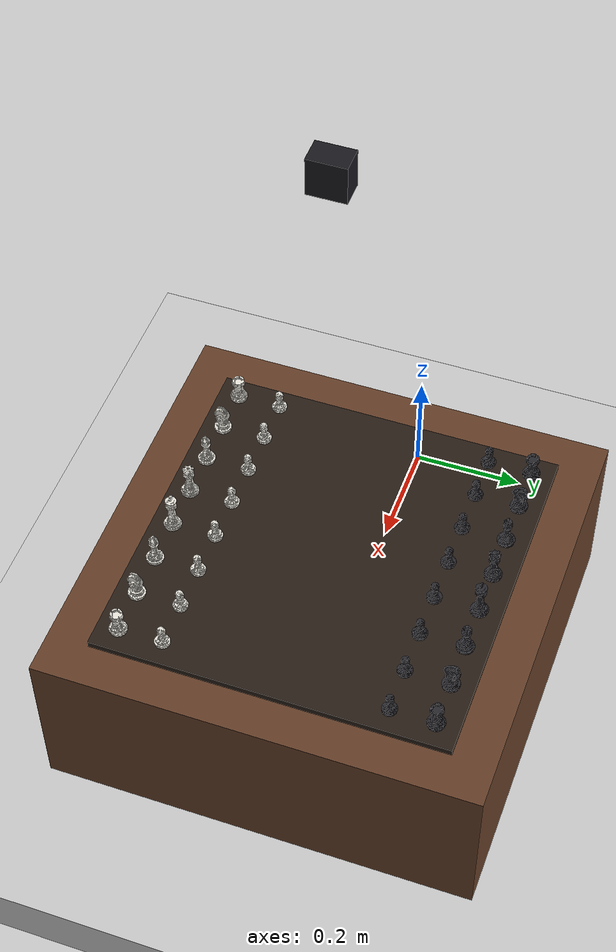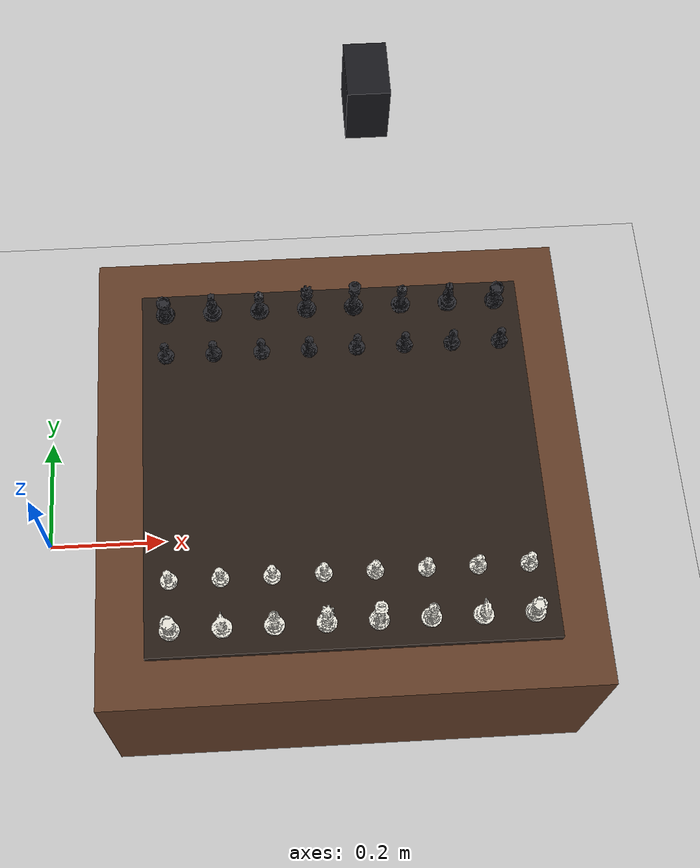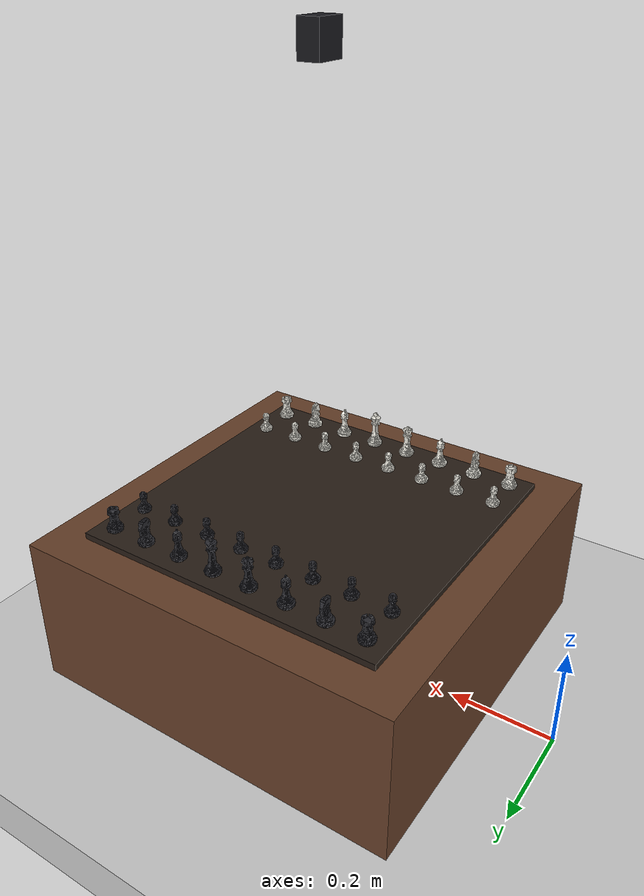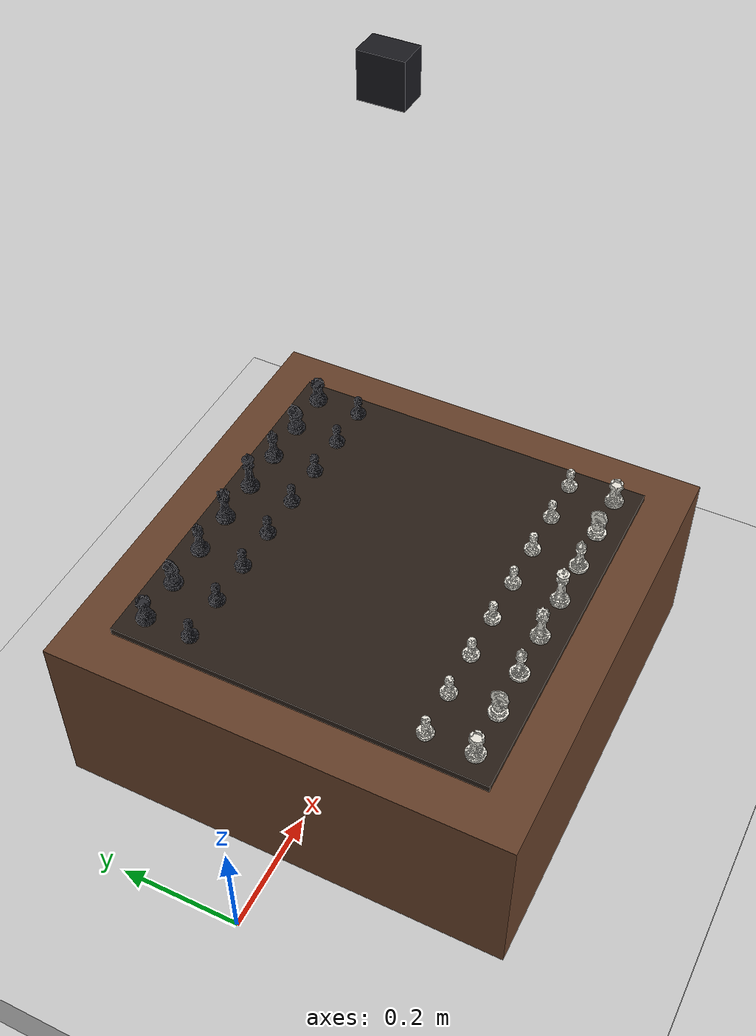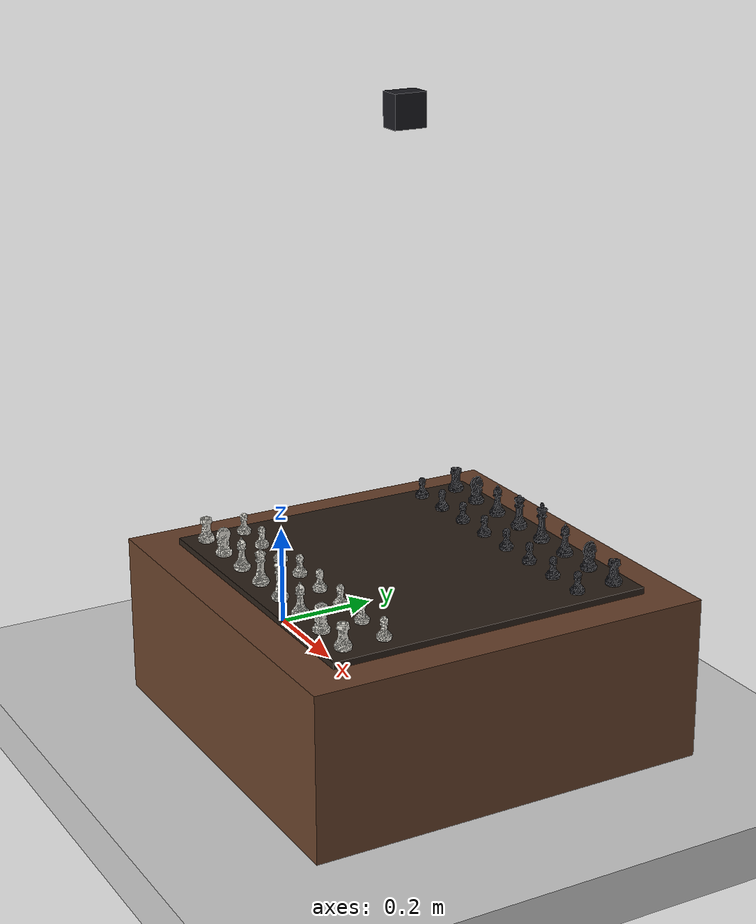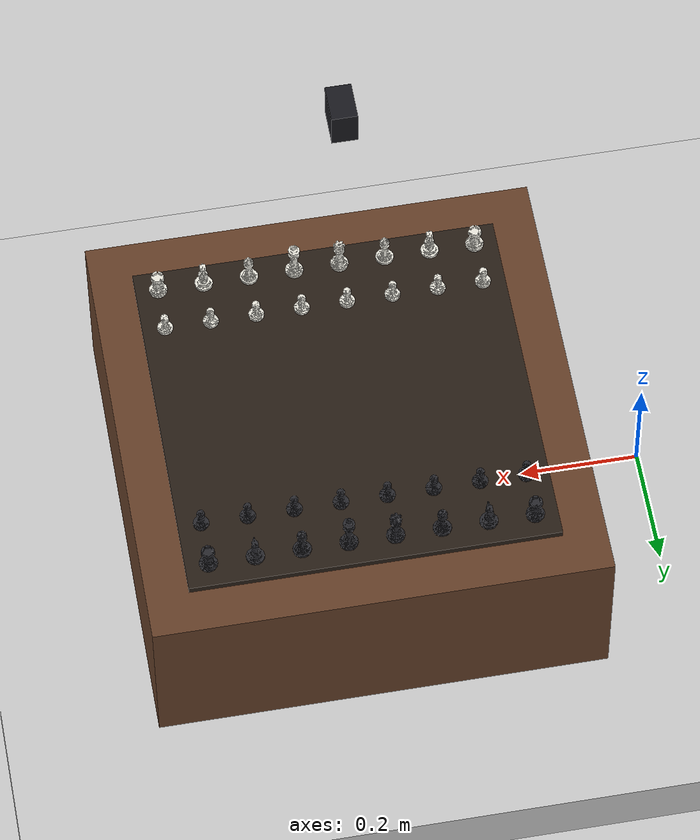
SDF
<?xml version="1.0"?>
<sdf version="1.9">
  <world name="default">
    <plugin
      filename="gz-sim-physics-system"
      name="gz::sim::systems::Physics" />
    <plugin
      filename="gz-sim-user-commands-system"
      name="gz::sim::systems::UserCommands" />
    <plugin
      filename="gz-sim-scene-broadcaster-system"
      name="gz::sim::systems::SceneBroadcaster" />
    <plugin
      filename="gz-sim-sensors-system"
      name="gz::sim::systems::Sensors">
      <render_engine>ogre</render_engine>
    </plugin>

    <gravity>0 0 -9.8</gravity>

    <physics name="physics" type="ode">
      <max_step_size>0.001</max_step_size>
      <real_time_factor>1.0</real_time_factor>
      <real_time_update_rate>1000</real_time_update_rate>
    </physics>

    <scene>
      <ambient>0.7 0.7 0.7 1</ambient>
      <background>0.92 0.94 0.98 1</background>
      <shadows>true</shadows>
    </scene>

    <gui fullscreen="0">
      <plugin filename="MinimalScene" name="3D View">
        <gz-gui>
          <title>3D View</title>
          <property type="bool" key="showTitleBar">false</property>
          <property type="string" key="state">docked</property>
        </gz-gui>
        <engine>ogre</engine>
        <scene>scene</scene>
        <camera_pose>2.05 -1.75 1.45 0.0 0.52 2.35</camera_pose>
      </plugin>
      <plugin filename="WorldControl" name="World control">
        <gz-gui>
          <property type="bool" key="showTitleBar">false</property>
          <property type="bool" key="resizable">false</property>
          <property type="double" key="height">72</property>
          <property type="double" key="z">1</property>
          <property type="string" key="state">floating</property>
        </gz-gui>
        <play_pause>true</play_pause>
        <step>true</step>
        <use_event>true</use_event>
      </plugin>
    </gui>

    <light name="sun" type="directional">
      <cast_shadows>true</cast_shadows>
      <pose>0 0 10 0 0 0</pose>
      <diffuse>0.9 0.9 0.9 1</diffuse>
      <specular>0.2 0.2 0.2 1</specular>
      <attenuation>
        <range>100</range>
        <constant>0.9</constant>
        <linear>0.01</linear>
        <quadratic>0.001</quadratic>
      </attenuation>
      <direction>-0.3 0.2 -1</direction>
    </light>

    <model name="ground_plane">
      <static>true</static>
      <pose>0 0 -0.05 0 0 0</pose>
      <link name="link">
        <collision name="collision">
          <geometry>
            <box>
              <size>10 10 0.1</size>
            </box>
          </geometry>
        </collision>
        <visual name="visual">
          <geometry>
            <box>
              <size>10 10 0.1</size>
            </box>
          </geometry>
          <material>
            <ambient>0.8 0.8 0.8 1</ambient>
            <diffuse>0.8 0.8 0.8 1</diffuse>
          </material>
        </visual>
      </link>
    </model>

    <model name="table">
      <static>true</static>
      <pose>0.5 0 0.15 0 0 0</pose>
      <link name="link">
        <collision name="collision">
          <geometry>
            <box>
              <size>0.75 0.75 0.3</size>
            </box>
          </geometry>
        </collision>
        <visual name="visual">
          <geometry>
            <box>
              <size>0.75 0.75 0.3</size>
            </box>
          </geometry>
          <material>
            <ambient>0.4 0.25 0.16 1</ambient>
            <diffuse>0.4 0.25 0.16 1</diffuse>
          </material>
        </visual>
      </link>
    </model>

    <model name="board">
      <static>true</static>
      <pose>0.501 0 0.306 0 0 0</pose>
      <link name="link">
        <collision name="collision">
          <geometry>
            <box>
              <size>0.608 0.608 0.012</size>
            </box>
          </geometry>
        </collision>
        <visual name="visual">
          <geometry>
            <box>
              <size>0.608 0.608 0.012</size>
            </box>
          </geometry>
          <material>
            <ambient>0.16 0.12 0.09 1</ambient>
            <diffuse>0.16 0.12 0.09 1</diffuse>
          </material>
        </visual>
      </link>
    </model>

    <include>
      <uri>model://white_rook</uri>
      <name>white_rook_a1</name>
      <pose>0.235 -0.266 0.312 0 0 0</pose>
    </include>
    <include>
      <uri>model://white_knight</uri>
      <name>white_knight_b1</name>
      <pose>0.311 -0.266 0.312 0 0 0</pose>
    </include>
    <include>
      <uri>model://white_bishop</uri>
      <name>white_bishop_c1</name>
      <pose>0.387 -0.266 0.312 0 0 0</pose>
    </include>
    <include>
      <uri>model://white_queen</uri>
      <name>white_queen_d1</name>
      <pose>0.463 -0.266 0.312 0 0 0</pose>
    </include>
    <include>
      <uri>model://white_king</uri>
      <name>white_king_e1</name>
      <pose>0.539 -0.266 0.312 0 0 0</pose>
    </include>
    <include>
      <uri>model://white_bishop</uri>
      <name>white_bishop_f1</name>
      <pose>0.615 -0.266 0.312 0 0 0</pose>
    </include>
    <include>
      <uri>model://white_knight</uri>
      <name>white_knight_g1</name>
      <pose>0.691 -0.266 0.312 0 0 0</pose>
    </include>
    <include>
      <uri>model://white_rook</uri>
      <name>white_rook_h1</name>
      <pose>0.767 -0.266 0.312 0 0 0</pose>
    </include>
    <include>
      <uri>model://white_pawn</uri>
      <name>white_pawn_a2</name>
      <pose>0.235 -0.190 0.312 0 0 0</pose>
    </include>
    <include>
      <uri>model://white_pawn</uri>
      <name>white_pawn_b2</name>
      <pose>0.311 -0.190 0.312 0 0 0</pose>
    </include>
    <include>
      <uri>model://white_pawn</uri>
      <name>white_pawn_c2</name>
      <pose>0.387 -0.190 0.312 0 0 0</pose>
    </include>
    <include>
      <uri>model://white_pawn</uri>
      <name>white_pawn_d2</name>
      <pose>0.463 -0.190 0.312 0 0 0</pose>
    </include>
    <include>
      <uri>model://white_pawn</uri>
      <name>white_pawn_e2</name>
      <pose>0.539 -0.190 0.312 0 0 0</pose>
    </include>
    <include>
      <uri>model://white_pawn</uri>
      <name>white_pawn_f2</name>
      <pose>0.615 -0.190 0.312 0 0 0</pose>
    </include>
    <include>
      <uri>model://white_pawn</uri>
      <name>white_pawn_g2</name>
      <pose>0.691 -0.190 0.312 0 0 0</pose>
    </include>
    <include>
      <uri>model://white_pawn</uri>
      <name>white_pawn_h2</name>
      <pose>0.767 -0.190 0.312 0 0 0</pose>
    </include>

    <include>
      <uri>model://black_rook</uri>
      <name>black_rook_a8</name>
      <pose>0.235 0.266 0.312 0 0 3.14159265359</pose>
    </include>
    <include>
      <uri>model://black_knight</uri>
      <name>black_knight_b8</name>
      <pose>0.311 0.266 0.312 0 0 3.14159265359</pose>
    </include>
    <include>
      <uri>model://black_bishop</uri>
      <name>black_bishop_c8</name>
      <pose>0.387 0.266 0.312 0 0 3.14159265359</pose>
    </include>
    <include>
      <uri>model://black_queen</uri>
      <name>black_queen_d8</name>
      <pose>0.463 0.266 0.312 0 0 3.14159265359</pose>
    </include>
    <include>
      <uri>model://black_king</uri>
      <name>black_king_e8</name>
      <pose>0.539 0.266 0.312 0 0 3.14159265359</pose>
    </include>
    <include>
      <uri>model://black_bishop</uri>
      <name>black_bishop_f8</name>
      <pose>0.615 0.266 0.312 0 0 3.14159265359</pose>
    </include>
    <include>
      <uri>model://black_knight</uri>
      <name>black_knight_g8</name>
      <pose>0.691 0.266 0.312 0 0 3.14159265359</pose>
    </include>
    <include>
      <uri>model://black_rook</uri>
      <name>black_rook_h8</name>
      <pose>0.767 0.266 0.312 0 0 3.14159265359</pose>
    </include>
    <include>
      <uri>model://black_pawn</uri>
      <name>black_pawn_a7</name>
      <pose>0.235 0.190 0.312 0 0 3.14159265359</pose>
    </include>
    <include>
      <uri>model://black_pawn</uri>
      <name>black_pawn_b7</name>
      <pose>0.311 0.190 0.312 0 0 3.14159265359</pose>
    </include>
    <include>
      <uri>model://black_pawn</uri>
      <name>black_pawn_c7</name>
      <pose>0.387 0.190 0.312 0 0 3.14159265359</pose>
    </include>
    <include>
      <uri>model://black_pawn</uri>
      <name>black_pawn_d7</name>
      <pose>0.463 0.190 0.312 0 0 3.14159265359</pose>
    </include>
    <include>
      <uri>model://black_pawn</uri>
      <name>black_pawn_e7</name>
      <pose>0.539 0.190 0.312 0 0 3.14159265359</pose>
    </include>
    <include>
      <uri>model://black_pawn</uri>
      <name>black_pawn_f7</name>
      <pose>0.615 0.190 0.312 0 0 3.14159265359</pose>
    </include>
    <include>
      <uri>model://black_pawn</uri>
      <name>black_pawn_g7</name>
      <pose>0.691 0.190 0.312 0 0 3.14159265359</pose>
    </include>
    <include>
      <uri>model://black_pawn</uri>
      <name>black_pawn_h7</name>
      <pose>0.767 0.190 0.312 0 0 3.14159265359</pose>
    </include>

    <model name="overhead_camera">
      <static>true</static>
      <pose>0.501 0 1.12 0 1.57079632679 0</pose>
      <link name="camera_link">
        <visual name="visual">
          <geometry>
            <box>
              <size>0.06 0.06 0.04</size>
            </box>
          </geometry>
          <material>
            <ambient>0.1 0.1 0.12 1</ambient>
            <diffuse>0.1 0.1 0.12 1</diffuse>
          </material>
        </visual>
        <sensor name="overhead_camera" type="camera">
          <always_on>1</always_on>
          <update_rate>15</update_rate>
          <visualize>true</visualize>
          <topic>overhead_camera/image</topic>
          <camera>
            <horizontal_fov>0.92</horizontal_fov>
            <image>
              <width>960</width>
              <height>960</height>
              <format>R8G8B8</format>
            </image>
            <clip>
              <near>0.05</near>
              <far>4.0</far>
            </clip>
          </camera>
        </sensor>
      </link>
    </model>
  </world>
</sdf>

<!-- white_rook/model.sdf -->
<sdf version="1.9">
  <model name="white_rook">
    <static>false</static>
    <link name="piece">
      <inertial>
        <mass>0.055</mass>
        <inertia>
          <ixx>0.000018</ixx>
          <iyy>0.000018</iyy>
          <izz>0.000010</izz>
        </inertia>
      </inertial>
      <collision name="collision">
        <pose>0 0 0.0225 0 0 0</pose>
        <geometry>
          <cylinder>
            <radius>0.016</radius>
            <length>0.045</length>
          </cylinder>
        </geometry>
      </collision>
      <visual name="visual">
        <geometry>
          <mesh>
            <uri>model://chess_piece_meshes/meshes/rook.stl</uri>
            <scale>0.001 0.001 0.001</scale>
          </mesh>
        </geometry>
        <material>
          <ambient>0.93 0.92 0.88 1</ambient>
          <diffuse>0.93 0.92 0.88 1</diffuse>
          <specular>0.20 0.20 0.20 1</specular>
        </material>
      </visual>
    </link>
  </model>
</sdf>

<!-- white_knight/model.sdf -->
<sdf version="1.9">
  <model name="white_knight">
    <static>false</static>
    <link name="piece">
      <inertial>
        <mass>0.050</mass>
        <inertia>
          <ixx>0.000016</ixx>
          <iyy>0.000016</iyy>
          <izz>0.000010</izz>
        </inertia>
      </inertial>
      <collision name="collision">
        <pose>0 0 0.0265 0 0 0</pose>
        <geometry>
          <box>
            <size>0.030 0.028 0.053</size>
          </box>
        </geometry>
      </collision>
      <visual name="visual">
        <geometry>
          <mesh>
            <uri>model://chess_piece_meshes/meshes/knight.stl</uri>
            <scale>0.001 0.001 0.001</scale>
          </mesh>
        </geometry>
        <material>
          <ambient>0.93 0.92 0.88 1</ambient>
          <diffuse>0.93 0.92 0.88 1</diffuse>
          <specular>0.20 0.20 0.20 1</specular>
        </material>
      </visual>
    </link>
  </model>
</sdf>

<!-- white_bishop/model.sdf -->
<sdf version="1.9">
  <model name="white_bishop">
    <static>false</static>
    <link name="piece">
      <inertial>
        <mass>0.050</mass>
        <inertia>
          <ixx>0.000016</ixx>
          <iyy>0.000016</iyy>
          <izz>0.000010</izz>
        </inertia>
      </inertial>
      <collision name="collision">
        <pose>0 0 0.030 0 0 0</pose>
        <geometry>
          <cylinder>
            <radius>0.015</radius>
            <length>0.060</length>
          </cylinder>
        </geometry>
      </collision>
      <visual name="visual">
        <geometry>
          <mesh>
            <uri>model://chess_piece_meshes/meshes/bishop.stl</uri>
            <scale>0.001 0.001 0.001</scale>
          </mesh>
        </geometry>
        <material>
          <ambient>0.93 0.92 0.88 1</ambient>
          <diffuse>0.93 0.92 0.88 1</diffuse>
          <specular>0.20 0.20 0.20 1</specular>
        </material>
      </visual>
    </link>
  </model>
</sdf>

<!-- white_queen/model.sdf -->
<sdf version="1.9">
  <model name="white_queen">
    <static>false</static>
    <link name="piece">
      <inertial>
        <mass>0.060</mass>
        <inertia>
          <ixx>0.000020</ixx>
          <iyy>0.000020</iyy>
          <izz>0.000012</izz>
        </inertia>
      </inertial>
      <collision name="collision">
        <pose>0 0 0.0325 0 0 0</pose>
        <geometry>
          <cylinder>
            <radius>0.016</radius>
            <length>0.065</length>
          </cylinder>
        </geometry>
      </collision>
      <visual name="visual">
        <geometry>
          <mesh>
            <uri>model://chess_piece_meshes/meshes/queen.stl</uri>
            <scale>0.001 0.001 0.001</scale>
          </mesh>
        </geometry>
        <material>
          <ambient>0.93 0.92 0.88 1</ambient>
          <diffuse>0.93 0.92 0.88 1</diffuse>
          <specular>0.20 0.20 0.20 1</specular>
        </material>
      </visual>
    </link>
  </model>
</sdf>

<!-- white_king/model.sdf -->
<sdf version="1.9">
  <model name="white_king">
    <static>false</static>
    <link name="piece">
      <inertial>
        <mass>0.065</mass>
        <inertia>
          <ixx>0.000022</ixx>
          <iyy>0.000022</iyy>
          <izz>0.000013</izz>
        </inertia>
      </inertial>
      <collision name="collision">
        <pose>0 0 0.0375 0 0 0</pose>
        <geometry>
          <cylinder>
            <radius>0.016</radius>
            <length>0.075</length>
          </cylinder>
        </geometry>
      </collision>
      <visual name="body">
        <geometry>
          <mesh>
            <uri>model://chess_piece_meshes/meshes/king-body.stl</uri>
            <scale>0.001 0.001 0.001</scale>
          </mesh>
        </geometry>
        <material>
          <ambient>0.93 0.92 0.88 1</ambient>
          <diffuse>0.93 0.92 0.88 1</diffuse>
          <specular>0.20 0.20 0.20 1</specular>
        </material>
      </visual>
      <visual name="cross">
        <geometry>
          <mesh>
            <uri>model://chess_piece_meshes/meshes/king-cross.stl</uri>
            <scale>0.001 0.001 0.001</scale>
          </mesh>
        </geometry>
        <material>
          <ambient>0.93 0.92 0.88 1</ambient>
          <diffuse>0.93 0.92 0.88 1</diffuse>
          <specular>0.20 0.20 0.20 1</specular>
        </material>
      </visual>
    </link>
  </model>
</sdf>

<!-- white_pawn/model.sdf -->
<sdf version="1.9">
  <model name="white_pawn">
    <static>false</static>
    <link name="piece">
      <inertial>
        <mass>0.035</mass>
        <inertia>
          <ixx>0.000010</ixx>
          <iyy>0.000010</iyy>
          <izz>0.000006</izz>
        </inertia>
      </inertial>
      <collision name="collision">
        <pose>0 0 0.020 0 0 0</pose>
        <geometry>
          <cylinder>
            <radius>0.014</radius>
            <length>0.040</length>
          </cylinder>
        </geometry>
      </collision>
      <visual name="visual">
        <geometry>
          <mesh>
            <uri>model://chess_piece_meshes/meshes/pawn.stl</uri>
            <scale>0.001 0.001 0.001</scale>
          </mesh>
        </geometry>
        <material>
          <ambient>0.93 0.92 0.88 1</ambient>
          <diffuse>0.93 0.92 0.88 1</diffuse>
          <specular>0.20 0.20 0.20 1</specular>
        </material>
      </visual>
    </link>
  </model>
</sdf>

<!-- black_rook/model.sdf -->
<sdf version="1.9">
  <model name="black_rook">
    <static>false</static>
    <link name="piece">
      <inertial>
        <mass>0.055</mass>
        <inertia>
          <ixx>0.000018</ixx>
          <iyy>0.000018</iyy>
          <izz>0.000010</izz>
        </inertia>
      </inertial>
      <collision name="collision">
        <pose>0 0 0.0225 0 0 0</pose>
        <geometry>
          <cylinder>
            <radius>0.016</radius>
            <length>0.045</length>
          </cylinder>
        </geometry>
      </collision>
      <visual name="visual">
        <geometry>
          <mesh>
            <uri>model://chess_piece_meshes/meshes/rook.stl</uri>
            <scale>0.001 0.001 0.001</scale>
          </mesh>
        </geometry>
        <material>
          <ambient>0.16 0.16 0.18 1</ambient>
          <diffuse>0.16 0.16 0.18 1</diffuse>
          <specular>0.08 0.08 0.08 1</specular>
        </material>
      </visual>
    </link>
  </model>
</sdf>

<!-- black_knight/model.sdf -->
<sdf version="1.9">
  <model name="black_knight">
    <static>false</static>
    <link name="piece">
      <inertial>
        <mass>0.050</mass>
        <inertia>
          <ixx>0.000016</ixx>
          <iyy>0.000016</iyy>
          <izz>0.000010</izz>
        </inertia>
      </inertial>
      <collision name="collision">
        <pose>0 0 0.0265 0 0 0</pose>
        <geometry>
          <box>
            <size>0.030 0.028 0.053</size>
          </box>
        </geometry>
      </collision>
      <visual name="visual">
        <geometry>
          <mesh>
            <uri>model://chess_piece_meshes/meshes/knight.stl</uri>
            <scale>0.001 0.001 0.001</scale>
          </mesh>
        </geometry>
        <material>
          <ambient>0.16 0.16 0.18 1</ambient>
          <diffuse>0.16 0.16 0.18 1</diffuse>
          <specular>0.08 0.08 0.08 1</specular>
        </material>
      </visual>
    </link>
  </model>
</sdf>

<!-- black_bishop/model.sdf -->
<sdf version="1.9">
  <model name="black_bishop">
    <static>false</static>
    <link name="piece">
      <inertial>
        <mass>0.050</mass>
        <inertia>
          <ixx>0.000016</ixx>
          <iyy>0.000016</iyy>
          <izz>0.000010</izz>
        </inertia>
      </inertial>
      <collision name="collision">
        <pose>0 0 0.030 0 0 0</pose>
        <geometry>
          <cylinder>
            <radius>0.015</radius>
            <length>0.060</length>
          </cylinder>
        </geometry>
      </collision>
      <visual name="visual">
        <geometry>
          <mesh>
            <uri>model://chess_piece_meshes/meshes/bishop.stl</uri>
            <scale>0.001 0.001 0.001</scale>
          </mesh>
        </geometry>
        <material>
          <ambient>0.16 0.16 0.18 1</ambient>
          <diffuse>0.16 0.16 0.18 1</diffuse>
          <specular>0.08 0.08 0.08 1</specular>
        </material>
      </visual>
    </link>
  </model>
</sdf>

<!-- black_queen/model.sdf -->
<sdf version="1.9">
  <model name="black_queen">
    <static>false</static>
    <link name="piece">
      <inertial>
        <mass>0.060</mass>
        <inertia>
          <ixx>0.000020</ixx>
          <iyy>0.000020</iyy>
          <izz>0.000012</izz>
        </inertia>
      </inertial>
      <collision name="collision">
        <pose>0 0 0.0325 0 0 0</pose>
        <geometry>
          <cylinder>
            <radius>0.016</radius>
            <length>0.065</length>
          </cylinder>
        </geometry>
      </collision>
      <visual name="visual">
        <geometry>
          <mesh>
            <uri>model://chess_piece_meshes/meshes/queen.stl</uri>
            <scale>0.001 0.001 0.001</scale>
          </mesh>
        </geometry>
        <material>
          <ambient>0.16 0.16 0.18 1</ambient>
          <diffuse>0.16 0.16 0.18 1</diffuse>
          <specular>0.08 0.08 0.08 1</specular>
        </material>
      </visual>
    </link>
  </model>
</sdf>

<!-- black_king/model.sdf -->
<sdf version="1.9">
  <model name="black_king">
    <static>false</static>
    <link name="piece">
      <inertial>
        <mass>0.065</mass>
        <inertia>
          <ixx>0.000022</ixx>
          <iyy>0.000022</iyy>
          <izz>0.000013</izz>
        </inertia>
      </inertial>
      <collision name="collision">
        <pose>0 0 0.0375 0 0 0</pose>
        <geometry>
          <cylinder>
            <radius>0.016</radius>
            <length>0.075</length>
          </cylinder>
        </geometry>
      </collision>
      <visual name="body">
        <geometry>
          <mesh>
            <uri>model://chess_piece_meshes/meshes/king-body.stl</uri>
            <scale>0.001 0.001 0.001</scale>
          </mesh>
        </geometry>
        <material>
          <ambient>0.16 0.16 0.18 1</ambient>
          <diffuse>0.16 0.16 0.18 1</diffuse>
          <specular>0.08 0.08 0.08 1</specular>
        </material>
      </visual>
      <visual name="cross">
        <geometry>
          <mesh>
            <uri>model://chess_piece_meshes/meshes/king-cross.stl</uri>
            <scale>0.001 0.001 0.001</scale>
          </mesh>
        </geometry>
        <material>
          <ambient>0.16 0.16 0.18 1</ambient>
          <diffuse>0.16 0.16 0.18 1</diffuse>
          <specular>0.08 0.08 0.08 1</specular>
        </material>
      </visual>
    </link>
  </model>
</sdf>

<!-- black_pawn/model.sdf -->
<sdf version="1.9">
  <model name="black_pawn">
    <static>false</static>
    <link name="piece">
      <inertial>
        <mass>0.035</mass>
        <inertia>
          <ixx>0.000010</ixx>
          <iyy>0.000010</iyy>
          <izz>0.000006</izz>
        </inertia>
      </inertial>
      <collision name="collision">
        <pose>0 0 0.020 0 0 0</pose>
        <geometry>
          <cylinder>
            <radius>0.014</radius>
            <length>0.040</length>
          </cylinder>
        </geometry>
      </collision>
      <visual name="visual">
        <geometry>
          <mesh>
            <uri>model://chess_piece_meshes/meshes/pawn.stl</uri>
            <scale>0.001 0.001 0.001</scale>
          </mesh>
        </geometry>
        <material>
          <ambient>0.16 0.16 0.18 1</ambient>
          <diffuse>0.16 0.16 0.18 1</diffuse>
          <specular>0.08 0.08 0.08 1</specular>
        </material>
      </visual>
    </link>
  </model>
</sdf>
